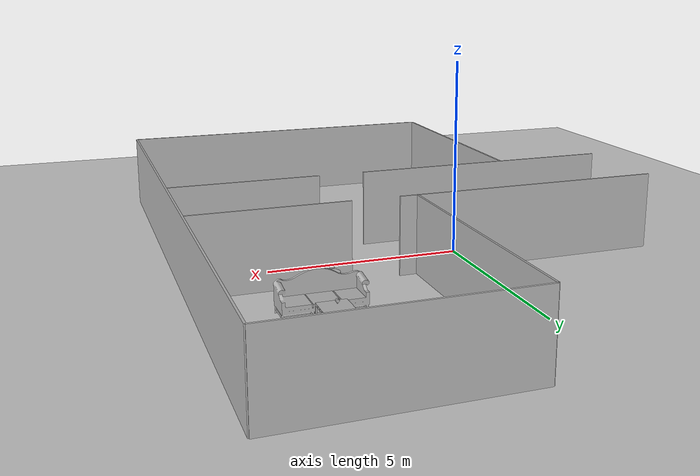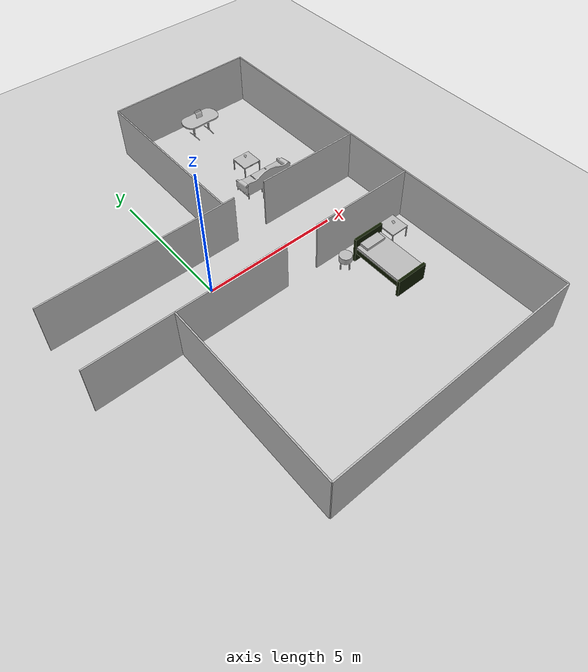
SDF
<sdf version="1.5">
 <world name="myworld">
  <include><uri>model://sun</uri></include>
  <include><uri>model://ground_plane</uri></include>
  <include><uri>model://hri_apartment</uri><pose>-5 0 1.5 0 3.1416 -1.5708</pose></include>
  <include><uri>model://hri_roundtable</uri><pose>4 2 0 0 0 0</pose></include>
  <include><uri>model://hri_couch</uri><pose>4.5 3 0 0 0 1.5708</pose></include>
  <include><uri>model://hri_coffeetable</uri><pose>4.5 4 0 0 0 0</pose></include>
  <include><uri>model://hri_dinnertable</uri><pose>4.5 7 0 0 0 1.5708</pose></include>
  <include><uri>model://hri_bed</uri><pose>5 -3 0 0 0 1.5708</pose></include>
  <include><uri>model://hri_roundtable</uri><pose>4 -2 0 0 0 0</pose></include>
  <include><uri>model://hri_coffeetable</uri><pose>6.2 -2 0 0 0 0</pose></include>
  <include><uri>model://hri_obj_laptop</uri><pose>4.5 7 0.9 0 0 0</pose></include>
  <include><uri>model://hri_obj_mug</uri><pose>4.5 4 0.6 0 0 0</pose></include>
  <include><uri>model://hri_obj_glassescase</uri><pose>4 2 0.6 0 0 0</pose></include>
  <include><uri>model://hri_obj_wallet</uri><pose>6.2 -2 0.5 0 0 0</pose></include>
 </world>
</sdf>

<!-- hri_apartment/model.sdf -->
<sdf version="1.4">
<model name="hri_apartment">
  <pose>0 0 0 0 0 0</pose>
  <static>true</static>

    <link name="wall1">
      <pose>1.2827    3.5115    .5000 0 0 0</pose>
      <inertial>
        <mass>1000.0</mass>
        <inertia> <!-- interias are tricky to compute -->
          <!-- http://answers.gazebosim.org/question/4372/the-inertia-matrix-explained/ -->
          <ixx>0.083</ixx>       <!-- for a box: ixx = 0.083 * mass * (y*y + z*z) -->
          <ixy>0.0</ixy>         <!-- for a box: ixy = 0 -->
          <ixz>0.0</ixz>         <!-- for a box: ixz = 0 -->
          <iyy>0.083</iyy>       <!-- for a box: iyy = 0.083 * mass * (x*x + z*z) -->
          <iyz>0.0</iyz>         <!-- for a box: iyz = 0 -->
          <izz>0.083</izz>       <!-- for a box: izz = 0.083 * mass * (x*x + y*y) -->
        </inertia>
      </inertial>
      <collision name="collision">
        <geometry>
          <box>
            <size>0.0500    7.0231    2.0000</size>
          </box>
        </geometry>
      </collision>
      <visual name="visual">
        <geometry>
          <box>
            <size>0.0500    7.0231    2.0000</size>
          </box>
        </geometry>
      </visual>
    </link>

    <link name="wall2">
      <pose>-1.4097    3.5115    0.5000 0 0 0</pose>
      <inertial>
        <mass>1000.0</mass>
        <inertia> <!-- interias are tricky to compute -->
          <!-- http://answers.gazebosim.org/question/4372/the-inertia-matrix-explained/ -->
          <ixx>0.083</ixx>       <!-- for a box: ixx = 0.083 * mass * (y*y + z*z) -->
          <ixy>0.0</ixy>         <!-- for a box: ixy = 0 -->
          <ixz>0.0</ixz>         <!-- for a box: ixz = 0 -->
          <iyy>0.083</iyy>       <!-- for a box: iyy = 0.083 * mass * (x*x + z*z) -->
          <iyz>0.0</iyz>         <!-- for a box: iyz = 0 -->
          <izz>0.083</izz>       <!-- for a box: izz = 0.083 * mass * (x*x + y*y) -->
        </inertia>
      </inertial>
      <collision name="collision">
        <geometry>
          <box>
            <size>0.0500    7.0231    2.0000</size>
          </box>
        </geometry>
      </collision>
      <visual name="visual">
        <geometry>
          <box>
            <size>0.0500    7.0231    2.0000</size>
          </box>
        </geometry>
      </visual>
    </link>

    <link name="wall3">
      <pose>1.2827   10.2235    0.5000 0 0 0</pose>
      <inertial>
        <mass>1000.0</mass>
        <inertia> <!-- interias are tricky to compute -->
          <!-- http://answers.gazebosim.org/question/4372/the-inertia-matrix-explained/ -->
          <ixx>0.083</ixx>       <!-- for a box: ixx = 0.083 * mass * (y*y + z*z) -->
          <ixy>0.0</ixy>         <!-- for a box: ixy = 0 -->
          <ixz>0.0</ixz>         <!-- for a box: ixz = 0 -->
          <iyy>0.083</iyy>       <!-- for a box: iyy = 0.083 * mass * (x*x + z*z) -->
          <iyz>0.0</iyz>         <!-- for a box: iyz = 0 -->
          <izz>0.083</izz>       <!-- for a box: izz = 0.083 * mass * (x*x + y*y) -->
        </inertia>
      </inertial>
      <collision name="collision">
        <geometry>
          <box>
            <size>0.0500    3.9624    2.0000</size>
          </box>
        </geometry>
      </collision>
      <visual name="visual">
        <geometry>
          <box>
            <size>0.0500    3.9624    2.0000</size>
          </box>
        </geometry>
      </visual>
    </link>

    <link name="wall4">
      <pose>-1.4097   10.2235    0.5000 0 0 0</pose>
      <inertial>
        <mass>1000.0</mass>
        <inertia> <!-- interias are tricky to compute -->
          <!-- http://answers.gazebosim.org/question/4372/the-inertia-matrix-explained/ -->
          <ixx>0.083</ixx>       <!-- for a box: ixx = 0.083 * mass * (y*y + z*z) -->
          <ixy>0.0</ixy>         <!-- for a box: ixy = 0 -->
          <ixz>0.0</ixz>         <!-- for a box: ixz = 0 -->
          <iyy>0.083</iyy>       <!-- for a box: iyy = 0.083 * mass * (x*x + z*z) -->
          <iyz>0.0</iyz>         <!-- for a box: iyz = 0 -->
          <izz>0.083</izz>       <!-- for a box: izz = 0.083 * mass * (x*x + y*y) -->
        </inertia>
      </inertial>
      <collision name="collision">
        <geometry>
          <box>
            <size>0.0500    3.9624    2.0000</size>
          </box>
        </geometry>
      </collision>
      <visual name="visual">
        <geometry>
          <box>
            <size>0.0500    3.9624    2.0000</size>
          </box>
        </geometry>
      </visual>
    </link>

    <link name="wall5">
      <pose>-0.0635   12.2047    0.5000 0 0 0</pose>
      <inertial>
        <mass>1000.0</mass>
        <inertia> <!-- interias are tricky to compute -->
          <!-- http://answers.gazebosim.org/question/4372/the-inertia-matrix-explained/ -->
          <ixx>0.083</ixx>       <!-- for a box: ixx = 0.083 * mass * (y*y + z*z) -->
          <ixy>0.0</ixy>         <!-- for a box: ixy = 0 -->
          <ixz>0.0</ixz>         <!-- for a box: ixz = 0 -->
          <iyy>0.083</iyy>       <!-- for a box: iyy = 0.083 * mass * (x*x + z*z) -->
          <iyz>0.0</iyz>         <!-- for a box: iyz = 0 -->
          <izz>0.083</izz>       <!-- for a box: izz = 0.083 * mass * (x*x + y*y) -->
        </inertia>
      </inertial>
      <collision name="collision">
        <geometry>
          <box>
            <size>15.7988    0.0500    2.0000</size>
          </box>
        </geometry>
      </collision>
      <visual name="visual">
        <geometry>
          <box>
            <size>15.7988    0.0500    2.0000</size>
          </box>
        </geometry>
      </visual>
    </link>

    <link name="wall6">
      <pose>-7.9629    7.5819    0.5000 0 0 0</pose>
      <inertial>
        <mass>1000.0</mass>
        <inertia> <!-- interias are tricky to compute -->
          <!-- http://answers.gazebosim.org/question/4372/the-inertia-matrix-explained/ -->
          <ixx>0.083</ixx>       <!-- for a box: ixx = 0.083 * mass * (y*y + z*z) -->
          <ixy>0.0</ixy>         <!-- for a box: ixy = 0 -->
          <ixz>0.0</ixz>         <!-- for a box: ixz = 0 -->
          <iyy>0.083</iyy>       <!-- for a box: iyy = 0.083 * mass * (x*x + z*z) -->
          <iyz>0.0</iyz>         <!-- for a box: iyz = 0 -->
          <izz>0.083</izz>       <!-- for a box: izz = 0.083 * mass * (x*x + y*y) -->
        </inertia>
      </inertial>
      <collision name="collision">
        <geometry>
          <box>
            <size>0.0500    9.2456    2.0000</size>
          </box>
        </geometry>
      </collision>
      <visual name="visual">
        <geometry>
          <box>
            <size>0.0500    9.2456    2.0000</size>
          </box>
        </geometry>
      </visual>
    </link>

    <link name="wall7">
      <pose>-4.6863    2.9591    0.5000 0 0 0</pose>
      <inertial>
        <mass>1000.0</mass>
        <inertia> <!-- interias are tricky to compute -->
          <!-- http://answers.gazebosim.org/question/4372/the-inertia-matrix-explained/ -->
          <ixx>0.083</ixx>       <!-- for a box: ixx = 0.083 * mass * (y*y + z*z) -->
          <ixy>0.0</ixy>         <!-- for a box: ixy = 0 -->
          <ixz>0.0</ixz>         <!-- for a box: ixz = 0 -->
          <iyy>0.083</iyy>       <!-- for a box: iyy = 0.083 * mass * (x*x + z*z) -->
          <iyz>0.0</iyz>         <!-- for a box: iyz = 0 -->
          <izz>0.083</izz>       <!-- for a box: izz = 0.083 * mass * (x*x + y*y) -->
        </inertia>
      </inertial>
      <collision name="collision">
        <geometry>
          <box>
            <size>6.5532    0.0500    2.0000</size>
          </box>
        </geometry>
      </collision>
      <visual name="visual">
        <geometry>
          <box>
            <size>6.5532    0.0500    2.0000</size>
          </box>
        </geometry>
      </visual>
    </link>

    <link name="wall8">
      <pose>4.5593    6.5659    0.5000 0 0 0</pose>
      <inertial>
        <mass>1000.0</mass>
        <inertia> <!-- interias are tricky to compute -->
          <!-- http://answers.gazebosim.org/question/4372/the-inertia-matrix-explained/ -->
          <ixx>0.083</ixx>       <!-- for a box: ixx = 0.083 * mass * (y*y + z*z) -->
          <ixy>0.0</ixy>         <!-- for a box: ixy = 0 -->
          <ixz>0.0</ixz>         <!-- for a box: ixz = 0 -->
          <iyy>0.083</iyy>       <!-- for a box: iyy = 0.083 * mass * (x*x + z*z) -->
          <iyz>0.0</iyz>         <!-- for a box: iyz = 0 -->
          <izz>0.083</izz>       <!-- for a box: izz = 0.083 * mass * (x*x + y*y) -->
        </inertia>
      </inertial>
      <collision name="collision">
        <geometry>
          <box>
            <size>6.5532    0.0500    2.0000</size>
          </box>
        </geometry>
      </collision>
      <visual name="visual">
        <geometry>
          <box>
            <size>6.5532    0.0500    2.0000</size>
          </box>
        </geometry>
      </visual>
    </link>

    <link name="wall9">
      <pose>7.8359    9.3853    0.5000 0 0 0</pose>
      <inertial>
        <mass>1000.0</mass>
        <inertia> <!-- interias are tricky to compute -->
          <!-- http://answers.gazebosim.org/question/4372/the-inertia-matrix-explained/ -->
          <ixx>0.083</ixx>       <!-- for a box: ixx = 0.083 * mass * (y*y + z*z) -->
          <ixy>0.0</ixy>         <!-- for a box: ixy = 0 -->
          <ixz>0.0</ixz>         <!-- for a box: ixz = 0 -->
          <iyy>0.083</iyy>       <!-- for a box: iyy = 0.083 * mass * (x*x + z*z) -->
          <iyz>0.0</iyz>         <!-- for a box: iyz = 0 -->
          <izz>0.083</izz>       <!-- for a box: izz = 0.083 * mass * (x*x + y*y) -->
        </inertia>
      </inertial>
      <collision name="collision">
        <geometry>
          <box>
            <size>0.0500    5.6388    2.0000</size>
          </box>
        </geometry>
      </collision>
      <visual name="visual">
        <geometry>
          <box>
            <size>0.0500    5.6388    2.0000</size>
          </box>
        </geometry>
      </visual>
    </link>

  </model>
</sdf>

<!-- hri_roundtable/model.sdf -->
<sdf version="1.4">
<model name="round table">
  <pose>0 0 0 0 0 0</pose>
  <static>true</static>
    <link name="link">
      <pose>0 0 0 0 0 0</pose>
      <inertial>
        <mass>1.0</mass>
        <inertia> <!-- interias are tricky to compute -->
          <!-- http://answers.gazebosim.org/question/4372/the-inertia-matrix-explained/ -->
          <ixx>0.083</ixx>       <!-- for a box: ixx = 0.083 * mass * (y*y + z*z) -->
          <ixy>0.0</ixy>         <!-- for a box: ixy = 0 -->
          <ixz>0.0</ixz>         <!-- for a box: ixz = 0 -->
          <iyy>0.083</iyy>       <!-- for a box: iyy = 0.083 * mass * (x*x + z*z) -->
          <iyz>0.0</iyz>         <!-- for a box: iyz = 0 -->
          <izz>0.083</izz>       <!-- for a box: izz = 0.083 * mass * (x*x + y*y) -->
        </inertia>
      </inertial>
      <collision name="collision">
	<pose>0 0 0 1.5708 0 0</pose>
        <geometry>
	  <mesh>
	    <uri>model://hri_roundtable/meshes/roundtable.dae</uri>
	    <scale>1 1 1</scale>
	  </mesh>
        </geometry>
      </collision>
      <visual name="visual">
	<pose>0 0 0 1.5708 0 0</pose>
        <geometry>
	  <mesh>
	    <uri>model://hri_roundtable/meshes/roundtable.dae</uri>
	    <scale>1 1 1</scale>
	  </mesh>
        </geometry>
      </visual>
    </link>
  </model>
</sdf>

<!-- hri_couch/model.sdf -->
<sdf version="1.4">
<model name="couch">
  <pose>0 0 0 0 0 0</pose>
  <static>true</static>
    <link name="link">
      <pose>0 0 0 0 0 0</pose>
      <inertial>
        <mass>1.0</mass>
        <inertia> <!-- interias are tricky to compute -->
          <!-- http://answers.gazebosim.org/question/4372/the-inertia-matrix-explained/ -->
          <ixx>0.083</ixx>       <!-- for a box: ixx = 0.083 * mass * (y*y + z*z) -->
          <ixy>0.0</ixy>         <!-- for a box: ixy = 0 -->
          <ixz>0.0</ixz>         <!-- for a box: ixz = 0 -->
          <iyy>0.083</iyy>       <!-- for a box: iyy = 0.083 * mass * (x*x + z*z) -->
          <iyz>0.0</iyz>         <!-- for a box: iyz = 0 -->
          <izz>0.083</izz>       <!-- for a box: izz = 0.083 * mass * (x*x + y*y) -->
        </inertia>
      </inertial>
      <collision name="collision">
	<pose>0 0 0 1.5708 0 0</pose>
        <geometry>
	  <mesh>
	    <uri>model://hri_couch/meshes/couch.dae</uri>
	    <scale>1 1 1</scale>
	  </mesh>
        </geometry>
      </collision>
      <visual name="visual">
	<pose>0 0 0 1.5708 0 0</pose>
        <geometry>
	  <mesh>
	    <uri>model://hri_couch/meshes/couch.dae</uri>
	    <scale>1 1 1</scale>
	  </mesh>
        </geometry>
      </visual>
    </link>
  </model>
</sdf>

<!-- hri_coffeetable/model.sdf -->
<sdf version="1.4">
<model name="coffee table">
  <pose>0 0 0 0 0 0</pose>
  <static>true</static>
    <link name="link">
      <pose>0 0 0 0 0 0</pose>
      <inertial>
        <mass>1.0</mass>
        <inertia> <!-- interias are tricky to compute -->
          <!-- http://answers.gazebosim.org/question/4372/the-inertia-matrix-explained/ -->
          <ixx>0.083</ixx>       <!-- for a box: ixx = 0.083 * mass * (y*y + z*z) -->
          <ixy>0.0</ixy>         <!-- for a box: ixy = 0 -->
          <ixz>0.0</ixz>         <!-- for a box: ixz = 0 -->
          <iyy>0.083</iyy>       <!-- for a box: iyy = 0.083 * mass * (x*x + z*z) -->
          <iyz>0.0</iyz>         <!-- for a box: iyz = 0 -->
          <izz>0.083</izz>       <!-- for a box: izz = 0.083 * mass * (x*x + y*y) -->
        </inertia>
      </inertial>
      <collision name="collision">
	<pose>0 0 0 1.5708 0 0</pose>
        <geometry>
	  <mesh>
	    <uri>model://hri_coffeetable/meshes/coffeetable.dae</uri>
	    <scale>1 1 1</scale>
	  </mesh>
        </geometry>
      </collision>
      <visual name="visual">
	<pose>0 0 0 1.5708 0 0</pose>
        <geometry>
	  <mesh>
	    <uri>model://hri_coffeetable/meshes/coffeetable.dae</uri>
	    <scale>1 1 1</scale>
	  </mesh>
        </geometry>
      </visual>
    </link>
  </model>
</sdf>

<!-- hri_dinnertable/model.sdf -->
<sdf version="1.4">
<model name="dinner table">
  <pose>0 0 0 0 0 0</pose>
  <static>true</static>
    <link name="link">
      <pose>0 0 0 0 0 0</pose>
      <inertial>
        <mass>1.0</mass>
        <inertia> <!-- interias are tricky to compute -->
          <!-- http://answers.gazebosim.org/question/4372/the-inertia-matrix-explained/ -->
          <ixx>0.083</ixx>       <!-- for a box: ixx = 0.083 * mass * (y*y + z*z) -->
          <ixy>0.0</ixy>         <!-- for a box: ixy = 0 -->
          <ixz>0.0</ixz>         <!-- for a box: ixz = 0 -->
          <iyy>0.083</iyy>       <!-- for a box: iyy = 0.083 * mass * (x*x + z*z) -->
          <iyz>0.0</iyz>         <!-- for a box: iyz = 0 -->
          <izz>0.083</izz>       <!-- for a box: izz = 0.083 * mass * (x*x + y*y) -->
        </inertia>
      </inertial>
      <collision name="collision">
	<pose>0 0 0 1.5708 0 0</pose>
        <geometry>
	  <mesh>
	    <uri>model://hri_dinnertable/meshes/dinnertable.dae</uri>
	    <scale>1 1 1</scale>
	  </mesh>
        </geometry>
      </collision>
      <visual name="visual">
	<pose>0 0 0 1.5708 0 0</pose>
        <geometry>
	  <mesh>
	    <uri>model://hri_dinnertable/meshes/dinnertable.dae</uri>
	    <scale>1 1 1</scale>
	  </mesh>
        </geometry>
      </visual>
    </link>
  </model>
</sdf>

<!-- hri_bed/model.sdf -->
<sdf version="1.5">
<model name="bed">
  <static>true</static>
    <link name="link">
      <pose>0 0 0.6 0 0 0</pose>
      <inertial>
        <mass>1.0</mass>
        <inertia> <!-- interias are tricky to compute -->
          <!-- http://answers.gazebosim.org/question/4372/the-inertia-matrix-explained/ -->
          <ixx>0.083</ixx>       <!-- for a box: ixx = 0.083 * mass * (y*y + z*z) -->
          <ixy>0.0</ixy>         <!-- for a box: ixy = 0 -->
          <ixz>0.0</ixz>         <!-- for a box: ixz = 0 -->
          <iyy>0.083</iyy>       <!-- for a box: iyy = 0.083 * mass * (x*x + z*z) -->
          <iyz>0.0</iyz>         <!-- for a box: iyz = 0 -->
          <izz>0.083</izz>       <!-- for a box: izz = 0.083 * mass * (x*x + y*y) -->
        </inertia>
      </inertial>
      <collision name="collision">
        <geometry>
          <box>
            <size>2.0    1.1    0.10</size>
          </box>
        </geometry>
      </collision>
      <visual name="visual">
        <geometry>
          <box>
            <size>2.0    1.1    0.10</size>
          </box>
        </geometry>
      </visual>
    </link>

    <link name="link2">
      <pose>0 0 0.45 0 0 0</pose>
      <inertial>
        <mass>1.0</mass>
        <inertia> <!-- interias are tricky to compute -->
          <!-- http://answers.gazebosim.org/question/4372/the-inertia-matrix-explained/ -->
          <ixx>0.083</ixx>       <!-- for a box: ixx = 0.083 * mass * (y*y + z*z) -->
          <ixy>0.0</ixy>         <!-- for a box: ixy = 0 -->
          <ixz>0.0</ixz>         <!-- for a box: ixz = 0 -->
          <iyy>0.083</iyy>       <!-- for a box: iyy = 0.083 * mass * (x*x + z*z) -->
          <iyz>0.0</iyz>         <!-- for a box: iyz = 0 -->
          <izz>0.083</izz>       <!-- for a box: izz = 0.083 * mass * (x*x + y*y) -->
        </inertia>
      </inertial>
      <collision name="collision">
        <geometry>
          <box>
            <size>2.0    1.1    0.20</size>
          </box>
        </geometry>
      </collision>
      <visual name="visual">
        <geometry>
          <box>
            <size>2.0    1.1    0.20</size>
          </box>
        </geometry>
	<material>
	  <ambient>0.25 0 0 1</ambient>
	  <diffuse>0.05 0.1 0 1</diffuse>
	  <specular>0.1 0.1 0.1 1</specular>
	  <emissive>0 0 0 0</emissive>
	</material>
      </visual>
    </link>

    <link name="link3">
      <pose>1 0 0.5 0 0 0</pose>
      <inertial>
        <mass>1.0</mass>
        <inertia> <!-- interias are tricky to compute -->
          <!-- http://answers.gazebosim.org/question/4372/the-inertia-matrix-explained/ -->
          <ixx>0.083</ixx>       <!-- for a box: ixx = 0.083 * mass * (y*y + z*z) -->
          <ixy>0.0</ixy>         <!-- for a box: ixy = 0 -->
          <ixz>0.0</ixz>         <!-- for a box: ixz = 0 -->
          <iyy>0.083</iyy>       <!-- for a box: iyy = 0.083 * mass * (x*x + z*z) -->
          <iyz>0.0</iyz>         <!-- for a box: iyz = 0 -->
          <izz>0.083</izz>       <!-- for a box: izz = 0.083 * mass * (x*x + y*y) -->
        </inertia>
      </inertial>
      <collision name="collision">
        <geometry>
          <box>
            <size>0.1    1.2    1.0</size>
          </box>
        </geometry>
      </collision>
      <visual name="visual">
        <geometry>
          <box>
            <size>0.1    1.2    1.0</size>
          </box>
        </geometry>
	<material>
	  <ambient>0.25 0 0 1</ambient>
	  <diffuse>0.05 0.1 0 1</diffuse>
	  <specular>0.1 0.1 0.1 1</specular>
	  <emissive>0 0 0 0</emissive>
	</material>
      </visual>
    </link>

    <link name="link4">
      <pose>-1 0 0.35 0 0 0</pose>
      <inertial>
        <mass>1.0</mass>
        <inertia> <!-- interias are tricky to compute -->
          <!-- http://answers.gazebosim.org/question/4372/the-inertia-matrix-explained/ -->
          <ixx>0.083</ixx>       <!-- for a box: ixx = 0.083 * mass * (y*y + z*z) -->
          <ixy>0.0</ixy>         <!-- for a box: ixy = 0 -->
          <ixz>0.0</ixz>         <!-- for a box: ixz = 0 -->
          <iyy>0.083</iyy>       <!-- for a box: iyy = 0.083 * mass * (x*x + z*z) -->
          <iyz>0.0</iyz>         <!-- for a box: iyz = 0 -->
          <izz>0.083</izz>       <!-- for a box: izz = 0.083 * mass * (x*x + y*y) -->
        </inertia>
      </inertial>
      <collision name="collision">
        <geometry>
          <box>
            <size>0.1    1.2    0.70</size>
          </box>
        </geometry>
      </collision>
      <visual name="visual">
        <geometry>
          <box>
            <size>0.1    1.2    0.70</size>
          </box>
        </geometry>
	<material>
	  <ambient>0.25 0 0 1</ambient>
	  <diffuse>0.05 0.1 0 1</diffuse>
	  <specular>0.1 0.1 0.1 1</specular>
	  <emissive>0 0 0 0</emissive>
	</material>
      </visual>
    </link>

    <link name="link5">
      <pose>0.80 0 0.7 0 0 0</pose>
      <inertial>
        <mass>1.0</mass>
        <inertia> <!-- interias are tricky to compute -->
          <!-- http://answers.gazebosim.org/question/4372/the-inertia-matrix-explained/ -->
          <ixx>0.083</ixx>       <!-- for a box: ixx = 0.083 * mass * (y*y + z*z) -->
          <ixy>0.0</ixy>         <!-- for a box: ixy = 0 -->
          <ixz>0.0</ixz>         <!-- for a box: ixz = 0 -->
          <iyy>0.083</iyy>       <!-- for a box: iyy = 0.083 * mass * (x*x + z*z) -->
          <iyz>0.0</iyz>         <!-- for a box: iyz = 0 -->
          <izz>0.083</izz>       <!-- for a box: izz = 0.083 * mass * (x*x + y*y) -->
        </inertia>
      </inertial>
      <collision name="collision">
        <geometry>
          <box>
            <size>0.4    0.8    0.10</size>
          </box>
        </geometry>
      </collision>
      <visual name="visual">
        <geometry>
          <box>
            <size>0.4    0.8    0.10</size>
          </box>
        </geometry>
      </visual>
    </link>

  </model>
</sdf>

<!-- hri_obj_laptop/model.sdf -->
<sdf version="1.5">
  <model name="hri_obj_laptop">
    <link name="link">
      <pose>0 0 0 0 0 0</pose>
      <inertial>
        <mass>0.0599</mass>
        <inertia>
          <ixx>0.0003028961527030333</ixx>
          <ixy>0</ixy>
          <ixz>0</ixz>
          <iyy>0.0003028961527030333</iyy>
          <iyz>0</iyz>
          <izz>3.2876352372798436e-05</izz>
        </inertia>
      </inertial>

      <collision name="collision">
        <geometry>
          <mesh>
            <uri>model://hri_obj_laptop/meshes/laptop.dae</uri>
          </mesh>
        </geometry>
        <surface>
          <contact>
            <!-- typical acrylic plastic material properties -->
            <poissons_ratio>0.35</poissons_ratio>
            <elastic_modulus>3.102640776e+09</elastic_modulus>
            <ode>
              <kp>100000</kp>
              <kd>100</kd>
              <max_vel>100.0</max_vel>
              <min_depth>0.001</min_depth>
            </ode>
          </contact>
          <friction>
            <torsional>
              <coefficient>1.0</coefficient>
              <use_patch_radius>0</use_patch_radius>
              <surface_radius>0.01</surface_radius>
            </torsional>
          </friction>
        </surface>
      </collision>

      <visual name="visual">
        <geometry>
          <mesh>
            <uri>model://hri_obj_laptop/meshes/laptop.dae</uri>
          </mesh>
        </geometry>
        <material>
          <script>
            <uri>file://media/materials/scripts/gazebo.material</uri>
            <name>Gazebo/GreyTransparent</name>
          </script>
        </material>
      </visual>

    </link>
  </model>
</sdf>

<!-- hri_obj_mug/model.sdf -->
<sdf version="1.5">
  <model name="hri_obj_mug">
    <link name="link">
      <pose>0 0 0.065 0 0 0</pose>
      <inertial>
        <mass>0.0599</mass>
        <inertia>
          <ixx>0.0003028961527030333</ixx>
          <ixy>0</ixy>
          <ixz>0</ixz>
          <iyy>0.0003028961527030333</iyy>
          <iyz>0</iyz>
          <izz>3.2876352372798436e-05</izz>
        </inertia>
      </inertial>

      <collision name="collision">
        <geometry>
          <mesh>
            <uri>model://hri_obj_mug/meshes/mug.dae</uri>
          </mesh>
        </geometry>
        <surface>
          <contact>
            <!-- typical acrylic plastic material properties -->
            <poissons_ratio>0.35</poissons_ratio>
            <elastic_modulus>3.102640776e+09</elastic_modulus>
            <ode>
              <kp>100000</kp>
              <kd>100</kd>
              <max_vel>100.0</max_vel>
              <min_depth>0.001</min_depth>
            </ode>
          </contact>
          <friction>
            <torsional>
              <coefficient>1.0</coefficient>
              <use_patch_radius>0</use_patch_radius>
              <surface_radius>0.01</surface_radius>
            </torsional>
          </friction>
        </surface>
      </collision>

      <visual name="visual">
        <geometry>
          <mesh>
            <uri>model://hri_obj_mug/meshes/mug.dae</uri>
          </mesh>
        </geometry>
        <material>
          <script>
            <uri>file://media/materials/scripts/gazebo.material</uri>
            <name>Gazebo/GreyTransparent</name>
          </script>
        </material>
      </visual>

    </link>
  </model>
</sdf>

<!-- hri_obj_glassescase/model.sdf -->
<sdf version="1.5">
  <model name="hri_obj_glassescase">
    <link name="link">
      <pose>0 0 0.065 0 0 0</pose>
      <inertial>
        <mass>0.0599</mass>
        <inertia>
          <ixx>0.0003028961527030333</ixx>
          <ixy>0</ixy>
          <ixz>0</ixz>
          <iyy>0.0003028961527030333</iyy>
          <iyz>0</iyz>
          <izz>3.2876352372798436e-05</izz>
        </inertia>
      </inertial>

      <collision name="collision">
        <geometry>
          <mesh>
            <uri>model://hri_obj_glassescase/meshes/glassescase.dae</uri>
          </mesh>
        </geometry>
        <surface>
          <contact>
            <!-- typical acrylic plastic material properties -->
            <poissons_ratio>0.35</poissons_ratio>
            <elastic_modulus>3.102640776e+09</elastic_modulus>
            <ode>
              <kp>100000</kp>
              <kd>100</kd>
              <max_vel>100.0</max_vel>
              <min_depth>0.001</min_depth>
            </ode>
          </contact>
          <friction>
            <torsional>
              <coefficient>1.0</coefficient>
              <use_patch_radius>0</use_patch_radius>
              <surface_radius>0.01</surface_radius>
            </torsional>
          </friction>
        </surface>
      </collision>

      <visual name="visual">
        <geometry>
          <mesh>
            <uri>model://hri_obj_glassescase/meshes/glassescase.dae</uri>
          </mesh>
        </geometry>
        <material>
          <script>
            <uri>file://media/materials/scripts/gazebo.material</uri>
            <name>Gazebo/GreyTransparent</name>
          </script>
        </material>
      </visual>

    </link>
  </model>
</sdf>

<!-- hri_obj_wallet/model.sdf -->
<sdf version="1.5">
  <model name="hri_obj_wallet">
    <link name="link">
      <pose>0 0 0.15 90 0 0</pose>
      <inertial>
        <mass>0.0599</mass>
        <inertia>
          <ixx>0.0003028961527030333</ixx>
          <ixy>0</ixy>
          <ixz>0</ixz>
          <iyy>0.0003028961527030333</iyy>
          <iyz>0</iyz>
          <izz>3.2876352372798436e-05</izz>
        </inertia>
      </inertial>

      <collision name="collision">
        <geometry>
          <mesh>
            <uri>model://hri_obj_wallet/meshes/wallet.dae</uri>
          </mesh>
        </geometry>
        <surface>
          <contact>
            <!-- typical acrylic plastic material properties -->
            <poissons_ratio>0.35</poissons_ratio>
            <elastic_modulus>3.102640776e+09</elastic_modulus>
            <ode>
              <kp>100000</kp>
              <kd>100</kd>
              <max_vel>100.0</max_vel>
              <min_depth>0.001</min_depth>
            </ode>
          </contact>
          <friction>
            <torsional>
              <coefficient>1.0</coefficient>
              <use_patch_radius>0</use_patch_radius>
              <surface_radius>0.01</surface_radius>
            </torsional>
          </friction>
        </surface>
      </collision>

      <visual name="visual">
        <geometry>
          <mesh>
            <uri>model://hri_obj_wallet/meshes/wallet.dae</uri>
          </mesh>
        </geometry>
        <material>
          <script>
            <uri>file://media/materials/scripts/gazebo.material</uri>
            <name>Gazebo/GreyTransparent</name>
          </script>
        </material>
      </visual>

    </link>
  </model>
</sdf>
